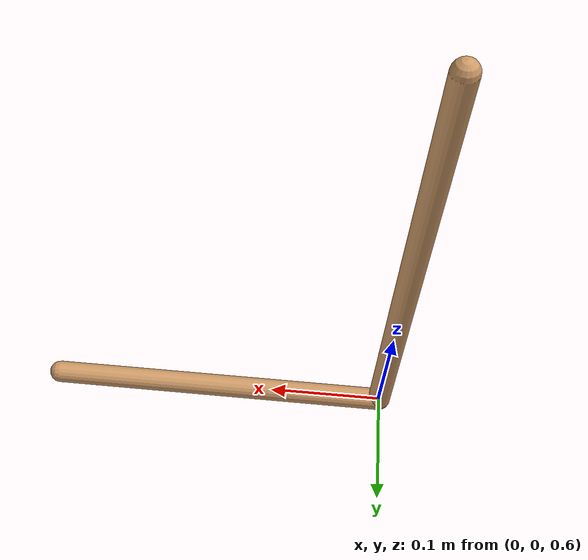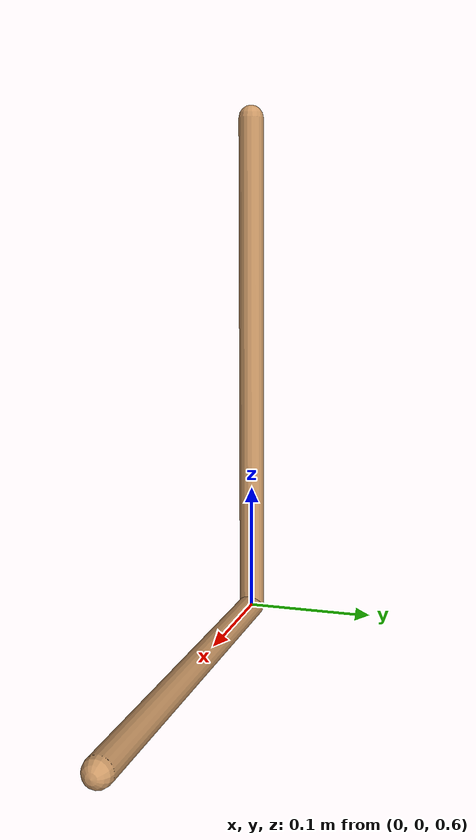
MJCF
<!--
    Made    : Jihyeok Choi
    Dates   : 04-13-2022
    - Two poles
-->
<mujoco model="example">
    <compiler coordinate="global"/>
    <default>
        <geom rgba=".8 .6 .4 1"/>
    </default>
    <asset>
        <texture type="skybox" builtin="gradient" rgb1="1 1 1" rgb2=".6 .8 1"
                 width="256" height="256"/>
    </asset>
    <worldbody>
        <light pos="0 1 1" dir="0 -1 -1" diffuse="1 1 1"/>
<!--        camera setting -->
        <camera name="fixed" pos="0 -1.5 2" xyaxes='1 0 0 0 1 1'/>
        <body name="pole1">
            <geom type="capsule" fromto="0 0 1  0 0 0.6" size="0.01"/>
        </body>
        <body name="pole2">
            <geom type="capsule" fromto="0 0 0.6  0.3 0 0.6" size="0.01"/>
            <joint name="yHinge" type="hinge" pos="0 0 0.6" axis="0 1 0"/>
        </body>
    </worldbody>

    <equality>
		<connect body1="pole1" body2="pole2" anchor="0 0 0.6" />
	</equality>

    <actuator>
		<motor name="torque" joint="yHinge" gear="1" ctrlrange="-100 100" ctrllimited="true"/>
		<position name="position_servo" joint="yHinge" kp="0"/>
		<velocity name="velocity_servo" joint="yHinge" kv="0"/>
	</actuator>
</mujoco>
